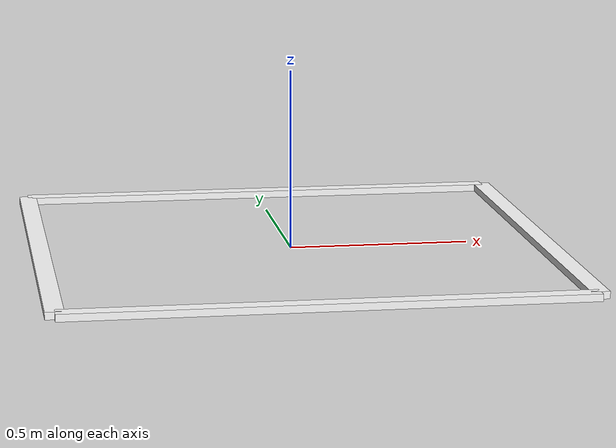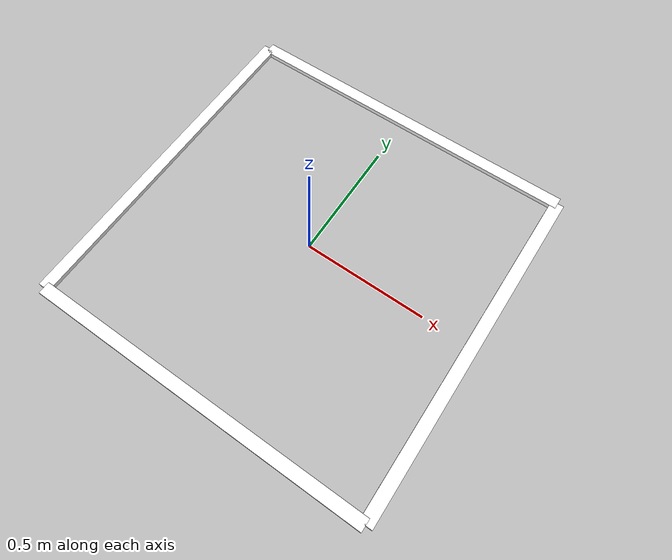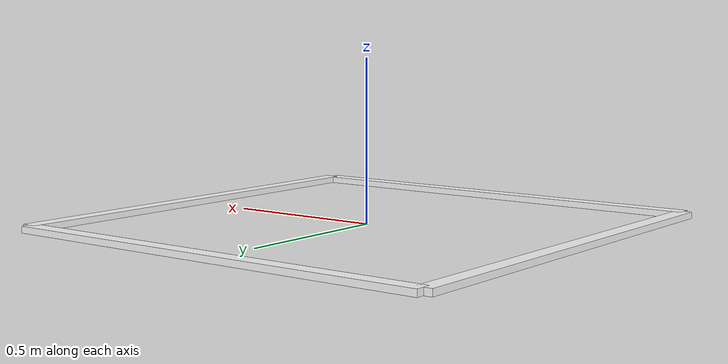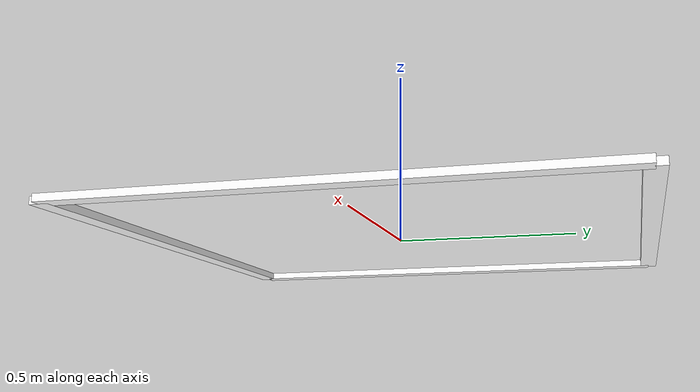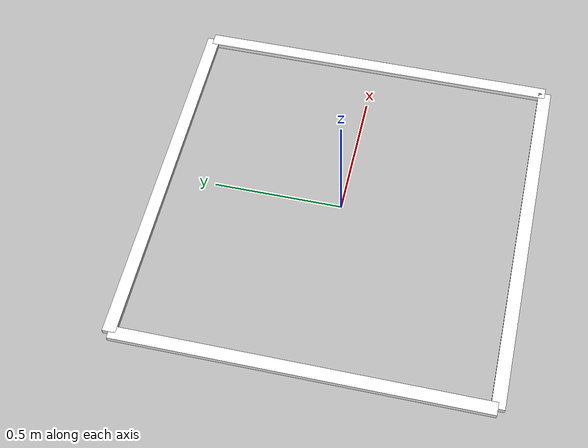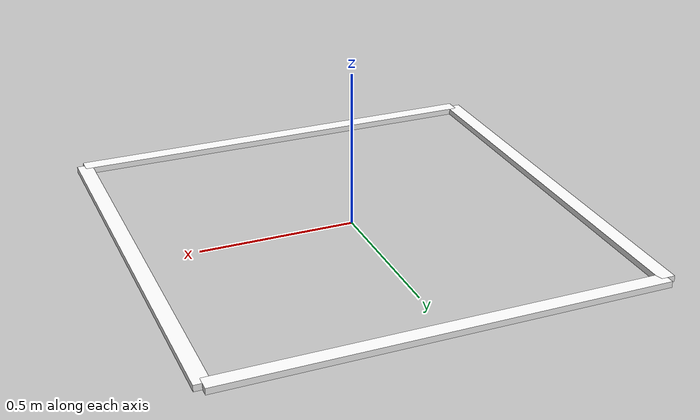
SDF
<?xml version="1.0"?>
<sdf version="1.8">
  <!-- SAUVC 2026 Starting Zone
       140cm x 140cm marker at water surface
       Semi-transparent orange
  -->
  <model name="starting_zone">
    <static>true</static>

    <link name="marker">
      <pose>0 0 0.01 0 0 0</pose>
      <inertial>
        <mass>0.5</mass>
        <inertia>
          <ixx>0.01</ixx>
          <ixy>0</ixy>
          <ixz>0</ixz>
          <iyy>0.01</iyy>
          <iyz>0</iyz>
          <izz>0.01</izz>
        </inertia>
      </inertial>

      <!-- Outer frame -->
      <visual name="frame_north">
        <pose>0 0.7 0 0 0 0</pose>
        <geometry>
          <box>
            <size>1.4 0.05 0.02</size>
          </box>
        </geometry>
        <material>
          <ambient>1 1 1 1</ambient>
          <diffuse>1 1 1 1</diffuse>
        </material>
      </visual>

      <visual name="frame_south">
        <pose>0 -0.7 0 0 0 0</pose>
        <geometry>
          <box>
            <size>1.4 0.05 0.02</size>
          </box>
        </geometry>
        <material>
          <ambient>1 1 1 1</ambient>
          <diffuse>1 1 1 1</diffuse>
        </material>
      </visual>

      <visual name="frame_east">
        <pose>0.7 0 0 0 0 0</pose>
        <geometry>
          <box>
            <size>0.05 1.4 0.02</size>
          </box>
        </geometry>
        <material>
          <ambient>1 1 1 1</ambient>
          <diffuse>1 1 1 1</diffuse>
        </material>
      </visual>

      <visual name="frame_west">
        <pose>-0.7 0 0 0 0 0</pose>
        <geometry>
          <box>
            <size>0.05 1.4 0.02</size>
          </box>
        </geometry>
        <material>
          <ambient>1 1 1 1</ambient>
          <diffuse>1 1 1 1</diffuse>
        </material>
      </visual>
    </link>

  </model>
</sdf>
